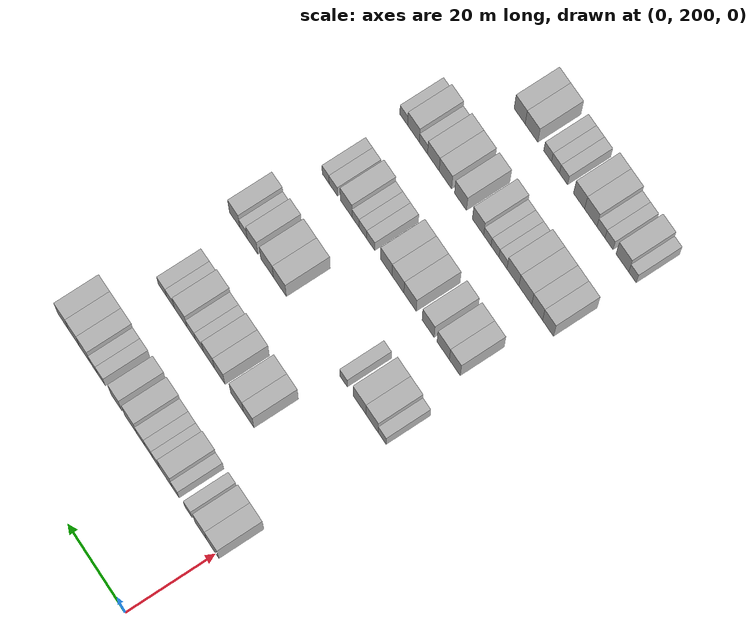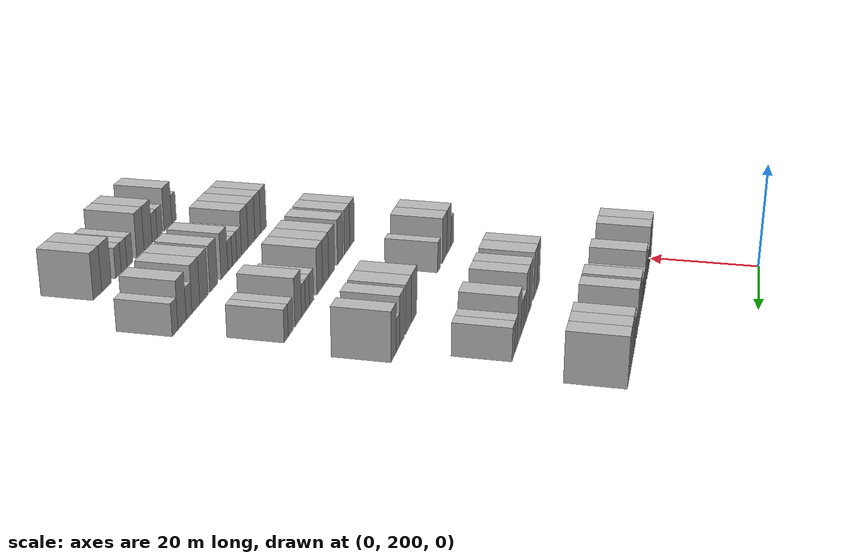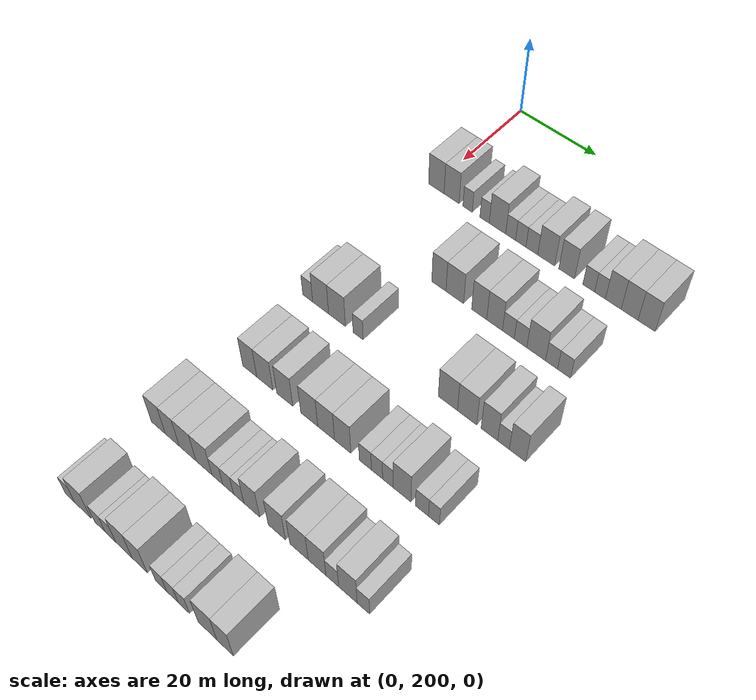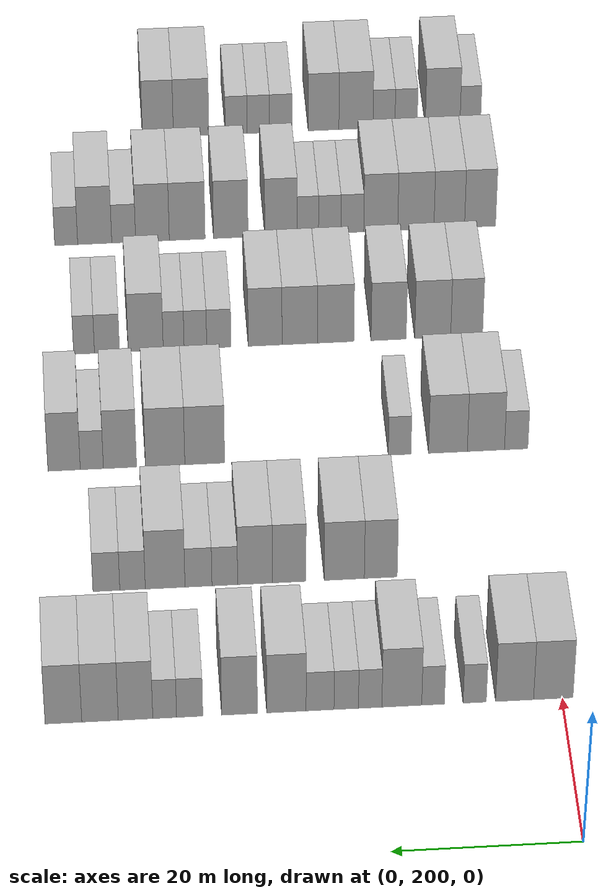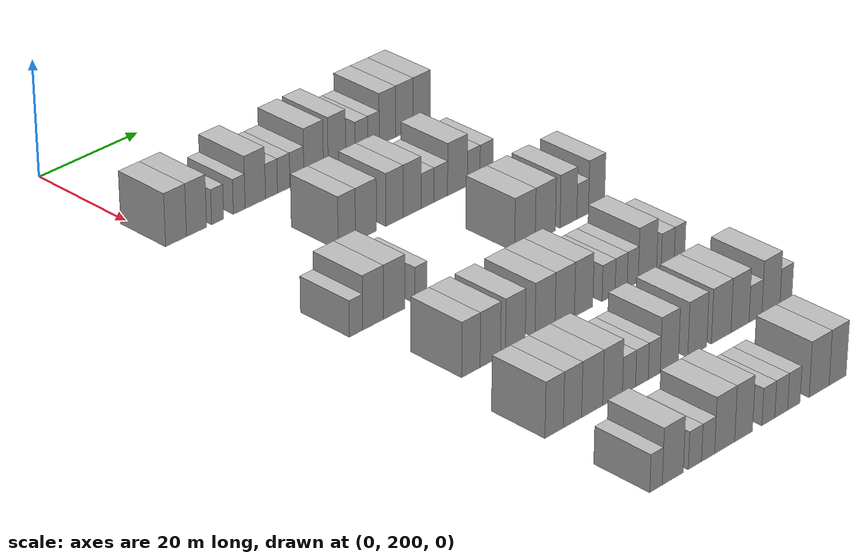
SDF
<sdf version="1.6">
 <world name="default">
  <model name="building_145">
   <static>1</static>
   <pose>25.0000 200.9862 0 0.000000 0.000000 0.000000</pose>
   <link name="link">
    <pose>0 0 4.50 0 0 0</pose>
    <collision name="collision"><geometry><box><size>10.0000 4.2171 9.0000</size></box></geometry></collision>
    <visual name="visual">
     <cast_shadows>0</cast_shadows>
     <geometry><box><size>10.0000 4.2171 9.0000</size></box></geometry>
     <material>
      <script>
       <uri>model://HANNAS_wall/materials/scripts</uri>
       <uri>model://HANNAS_wall/materials/textures</uri>
       <name>vrc/HANNAS_wall</name>
      </script>
     </material>
    </visual>
   </link>
  </model>
  <model name="building_146">
   <static>1</static>
   <pose>25.0000 205.1264 0 0.000000 0.000000 0.000000</pose>
   <link name="link">
    <pose>0 0 4.50 0 0 0</pose>
    <collision name="collision"><geometry><box><size>10.0000 4.0632 9.0000</size></box></geometry></collision>
    <visual name="visual">
     <cast_shadows>0</cast_shadows>
     <geometry><box><size>10.0000 4.0632 9.0000</size></box></geometry>
     <material>
      <script>
       <uri>model://HANNAS_wall/materials/scripts</uri>
       <uri>model://HANNAS_wall/materials/textures</uri>
       <name>vrc/HANNAS_wall</name>
      </script>
     </material>
    </visual>
   </link>
  </model>
  <model name="building_147">
   <static>1</static>
   <pose>25.0000 209.3965 0 0.000000 0.000000 0.000000</pose>
   <link name="link">
    <pose>0 0 3.00 0 0 0</pose>
    <collision name="collision"><geometry><box><size>10.0000 2.4770 6.0000</size></box></geometry></collision>
    <visual name="visual">
     <cast_shadows>0</cast_shadows>
     <geometry><box><size>10.0000 2.4770 6.0000</size></box></geometry>
     <material>
      <script>
       <uri>model://HANNAS_wall/materials/scripts</uri>
       <uri>model://HANNAS_wall/materials/textures</uri>
       <name>vrc/HANNAS_wall</name>
      </script>
     </material>
    </visual>
   </link>
  </model>
  <model name="building_148">
   <static>1</static>
   <pose>25.0000 213.8471 0 0.000000 0.000000 0.000000</pose>
   <link name="link">
    <pose>0 0 3.00 0 0 0</pose>
    <collision name="collision"><geometry><box><size>10.0000 2.4242 6.0000</size></box></geometry></collision>
    <visual name="visual">
     <cast_shadows>0</cast_shadows>
     <geometry><box><size>10.0000 2.4242 6.0000</size></box></geometry>
     <material>
      <script>
       <uri>model://HANNAS_wall/materials/scripts</uri>
       <uri>model://HANNAS_wall/materials/textures</uri>
       <name>vrc/HANNAS_wall</name>
      </script>
     </material>
    </visual>
   </link>
  </model>
  <model name="building_149">
   <static>1</static>
   <pose>25.0000 217.1848 0 0.000000 0.000000 0.000000</pose>
   <link name="link">
    <pose>0 0 4.50 0 0 0</pose>
    <collision name="collision"><geometry><box><size>10.0000 4.2511 9.0000</size></box></geometry></collision>
    <visual name="visual">
     <cast_shadows>0</cast_shadows>
     <geometry><box><size>10.0000 4.2511 9.0000</size></box></geometry>
     <material>
      <script>
       <uri>model://HANNAS_wall/materials/scripts</uri>
       <uri>model://HANNAS_wall/materials/textures</uri>
       <name>vrc/HANNAS_wall</name>
      </script>
     </material>
    </visual>
   </link>
  </model>
  <model name="building_150">
   <static>1</static>
   <pose>25.0000 220.5595 0 0.000000 0.000000 0.000000</pose>
   <link name="link">
    <pose>0 0 3.00 0 0 0</pose>
    <collision name="collision"><geometry><box><size>10.0000 2.4984 6.0000</size></box></geometry></collision>
    <visual name="visual">
     <cast_shadows>0</cast_shadows>
     <geometry><box><size>10.0000 2.4984 6.0000</size></box></geometry>
     <material>
      <script>
       <uri>model://HANNAS_wall/materials/scripts</uri>
       <uri>model://HANNAS_wall/materials/textures</uri>
       <name>vrc/HANNAS_wall</name>
      </script>
     </material>
    </visual>
   </link>
  </model>
  <model name="building_151">
   <static>1</static>
   <pose>25.0000 223.1140 0 0.000000 0.000000 0.000000</pose>
   <link name="link">
    <pose>0 0 3.00 0 0 0</pose>
    <collision name="collision"><geometry><box><size>10.0000 2.6106 6.0000</size></box></geometry></collision>
    <visual name="visual">
     <cast_shadows>0</cast_shadows>
     <geometry><box><size>10.0000 2.6106 6.0000</size></box></geometry>
     <material>
      <script>
       <uri>model://HANNAS_wall/materials/scripts</uri>
       <uri>model://HANNAS_wall/materials/textures</uri>
       <name>vrc/HANNAS_wall</name>
      </script>
     </material>
    </visual>
   </link>
  </model>
  <model name="building_152">
   <static>1</static>
   <pose>25.0000 225.9055 0 0.000000 0.000000 0.000000</pose>
   <link name="link">
    <pose>0 0 3.00 0 0 0</pose>
    <collision name="collision"><geometry><box><size>10.0000 2.9724 6.0000</size></box></geometry></collision>
    <visual name="visual">
     <cast_shadows>0</cast_shadows>
     <geometry><box><size>10.0000 2.9724 6.0000</size></box></geometry>
     <material>
      <script>
       <uri>model://HANNAS_wall/materials/scripts</uri>
       <uri>model://HANNAS_wall/materials/textures</uri>
       <name>vrc/HANNAS_wall</name>
      </script>
     </material>
    </visual>
   </link>
  </model>
  <model name="building_153">
   <static>1</static>
   <pose>25.0000 229.4831 0 0.000000 0.000000 0.000000</pose>
   <link name="link">
    <pose>0 0 4.50 0 0 0</pose>
    <collision name="collision"><geometry><box><size>10.0000 4.1829 9.0000</size></box></geometry></collision>
    <visual name="visual">
     <cast_shadows>0</cast_shadows>
     <geometry><box><size>10.0000 4.1829 9.0000</size></box></geometry>
     <material>
      <script>
       <uri>model://HANNAS_wall/materials/scripts</uri>
       <uri>model://HANNAS_wall/materials/textures</uri>
       <name>vrc/HANNAS_wall</name>
      </script>
     </material>
    </visual>
   </link>
  </model>
  <model name="building_154">
   <static>1</static>
   <pose>25.0000 234.4771 0 0.000000 0.000000 0.000000</pose>
   <link name="link">
    <pose>0 0 4.50 0 0 0</pose>
    <collision name="collision"><geometry><box><size>10.0000 3.8052 9.0000</size></box></geometry></collision>
    <visual name="visual">
     <cast_shadows>0</cast_shadows>
     <geometry><box><size>10.0000 3.8052 9.0000</size></box></geometry>
     <material>
      <script>
       <uri>model://HANNAS_wall/materials/scripts</uri>
       <uri>model://HANNAS_wall/materials/textures</uri>
       <name>vrc/HANNAS_wall</name>
      </script>
     </material>
    </visual>
   </link>
  </model>
  <model name="building_155">
   <static>1</static>
   <pose>25.0000 239.7736 0 0.000000 0.000000 0.000000</pose>
   <link name="link">
    <pose>0 0 3.00 0 0 0</pose>
    <collision name="collision"><geometry><box><size>10.0000 2.7876 6.0000</size></box></geometry></collision>
    <visual name="visual">
     <cast_shadows>0</cast_shadows>
     <geometry><box><size>10.0000 2.7876 6.0000</size></box></geometry>
     <material>
      <script>
       <uri>model://HANNAS_wall/materials/scripts</uri>
       <uri>model://HANNAS_wall/materials/textures</uri>
       <name>vrc/HANNAS_wall</name>
      </script>
     </material>
    </visual>
   </link>
  </model>
  <model name="building_156">
   <static>1</static>
   <pose>25.0000 242.4318 0 0.000000 0.000000 0.000000</pose>
   <link name="link">
    <pose>0 0 3.00 0 0 0</pose>
    <collision name="collision"><geometry><box><size>10.0000 2.5288 6.0000</size></box></geometry></collision>
    <visual name="visual">
     <cast_shadows>0</cast_shadows>
     <geometry><box><size>10.0000 2.5288 6.0000</size></box></geometry>
     <material>
      <script>
       <uri>model://HANNAS_wall/materials/scripts</uri>
       <uri>model://HANNAS_wall/materials/textures</uri>
       <name>vrc/HANNAS_wall</name>
      </script>
     </material>
    </visual>
   </link>
  </model>
  <model name="building_157">
   <static>1</static>
   <pose>25.0000 245.5266 0 0.000000 0.000000 0.000000</pose>
   <link name="link">
    <pose>0 0 4.50 0 0 0</pose>
    <collision name="collision"><geometry><box><size>10.0000 3.6608 9.0000</size></box></geometry></collision>
    <visual name="visual">
     <cast_shadows>0</cast_shadows>
     <geometry><box><size>10.0000 3.6608 9.0000</size></box></geometry>
     <material>
      <script>
       <uri>model://HANNAS_wall/materials/scripts</uri>
       <uri>model://HANNAS_wall/materials/textures</uri>
       <name>vrc/HANNAS_wall</name>
      </script>
     </material>
    </visual>
   </link>
  </model>
  <model name="building_158">
   <static>1</static>
   <pose>25.0000 249.2896 0 0.000000 0.000000 0.000000</pose>
   <link name="link">
    <pose>0 0 4.50 0 0 0</pose>
    <collision name="collision"><geometry><box><size>10.0000 3.8653 9.0000</size></box></geometry></collision>
    <visual name="visual">
     <cast_shadows>0</cast_shadows>
     <geometry><box><size>10.0000 3.8653 9.0000</size></box></geometry>
     <material>
      <script>
       <uri>model://HANNAS_wall/materials/scripts</uri>
       <uri>model://HANNAS_wall/materials/textures</uri>
       <name>vrc/HANNAS_wall</name>
      </script>
     </material>
    </visual>
   </link>
  </model>
  <model name="building_159">
   <static>1</static>
   <pose>25.0000 253.1648 0 0.000000 0.000000 0.000000</pose>
   <link name="link">
    <pose>0 0 4.50 0 0 0</pose>
    <collision name="collision"><geometry><box><size>10.0000 3.8851 9.0000</size></box></geometry></collision>
    <visual name="visual">
     <cast_shadows>0</cast_shadows>
     <geometry><box><size>10.0000 3.8851 9.0000</size></box></geometry>
     <material>
      <script>
       <uri>model://HANNAS_wall/materials/scripts</uri>
       <uri>model://HANNAS_wall/materials/textures</uri>
       <name>vrc/HANNAS_wall</name>
      </script>
     </material>
    </visual>
   </link>
  </model>
  <model name="building_316">
   <static>1</static>
   <pose>44.0000 217.8946 0 0.000000 0.000000 0.000000</pose>
   <link name="link">
    <pose>0 0 4.50 0 0 0</pose>
    <collision name="collision"><geometry><box><size>10.0000 3.6080 9.0000</size></box></geometry></collision>
    <visual name="visual">
     <cast_shadows>0</cast_shadows>
     <geometry><box><size>10.0000 3.6080 9.0000</size></box></geometry>
     <material>
      <script>
       <uri>model://HANNAS_wall/materials/scripts</uri>
       <uri>model://HANNAS_wall/materials/textures</uri>
       <name>vrc/HANNAS_wall</name>
      </script>
     </material>
    </visual>
   </link>
  </model>
  <model name="building_317">
   <static>1</static>
   <pose>44.0000 221.8998 0 0.000000 0.000000 0.000000</pose>
   <link name="link">
    <pose>0 0 4.50 0 0 0</pose>
    <collision name="collision"><geometry><box><size>10.0000 4.4024 9.0000</size></box></geometry></collision>
    <visual name="visual">
     <cast_shadows>0</cast_shadows>
     <geometry><box><size>10.0000 4.4024 9.0000</size></box></geometry>
     <material>
      <script>
       <uri>model://HANNAS_wall/materials/scripts</uri>
       <uri>model://HANNAS_wall/materials/textures</uri>
       <name>vrc/HANNAS_wall</name>
      </script>
     </material>
    </visual>
   </link>
  </model>
  <model name="building_318">
   <static>1</static>
   <pose>44.0000 227.9443 0 0.000000 0.000000 0.000000</pose>
   <link name="link">
    <pose>0 0 4.50 0 0 0</pose>
    <collision name="collision"><geometry><box><size>10.0000 3.6867 9.0000</size></box></geometry></collision>
    <visual name="visual">
     <cast_shadows>0</cast_shadows>
     <geometry><box><size>10.0000 3.6867 9.0000</size></box></geometry>
     <material>
      <script>
       <uri>model://HANNAS_wall/materials/scripts</uri>
       <uri>model://HANNAS_wall/materials/textures</uri>
       <name>vrc/HANNAS_wall</name>
      </script>
     </material>
    </visual>
   </link>
  </model>
  <model name="building_319">
   <static>1</static>
   <pose>44.0000 231.6931 0 0.000000 0.000000 0.000000</pose>
   <link name="link">
    <pose>0 0 4.50 0 0 0</pose>
    <collision name="collision"><geometry><box><size>10.0000 3.8109 9.0000</size></box></geometry></collision>
    <visual name="visual">
     <cast_shadows>0</cast_shadows>
     <geometry><box><size>10.0000 3.8109 9.0000</size></box></geometry>
     <material>
      <script>
       <uri>model://HANNAS_wall/materials/scripts</uri>
       <uri>model://HANNAS_wall/materials/textures</uri>
       <name>vrc/HANNAS_wall</name>
      </script>
     </material>
    </visual>
   </link>
  </model>
  <model name="building_320">
   <static>1</static>
   <pose>44.0000 235.0055 0 0.000000 0.000000 0.000000</pose>
   <link name="link">
    <pose>0 0 3.00 0 0 0</pose>
    <collision name="collision"><geometry><box><size>10.0000 2.8140 6.0000</size></box></geometry></collision>
    <visual name="visual">
     <cast_shadows>0</cast_shadows>
     <geometry><box><size>10.0000 2.8140 6.0000</size></box></geometry>
     <material>
      <script>
       <uri>model://HANNAS_wall/materials/scripts</uri>
       <uri>model://HANNAS_wall/materials/textures</uri>
       <name>vrc/HANNAS_wall</name>
      </script>
     </material>
    </visual>
   </link>
  </model>
  <model name="building_321">
   <static>1</static>
   <pose>44.0000 237.8888 0 0.000000 0.000000 0.000000</pose>
   <link name="link">
    <pose>0 0 3.00 0 0 0</pose>
    <collision name="collision"><geometry><box><size>10.0000 2.9527 6.0000</size></box></geometry></collision>
    <visual name="visual">
     <cast_shadows>0</cast_shadows>
     <geometry><box><size>10.0000 2.9527 6.0000</size></box></geometry>
     <material>
      <script>
       <uri>model://HANNAS_wall/materials/scripts</uri>
       <uri>model://HANNAS_wall/materials/textures</uri>
       <name>vrc/HANNAS_wall</name>
      </script>
     </material>
    </visual>
   </link>
  </model>
  <model name="building_322">
   <static>1</static>
   <pose>44.0000 241.5381 0 0.000000 0.000000 0.000000</pose>
   <link name="link">
    <pose>0 0 4.50 0 0 0</pose>
    <collision name="collision"><geometry><box><size>10.0000 4.3459 9.0000</size></box></geometry></collision>
    <visual name="visual">
     <cast_shadows>0</cast_shadows>
     <geometry><box><size>10.0000 4.3459 9.0000</size></box></geometry>
     <material>
      <script>
       <uri>model://HANNAS_wall/materials/scripts</uri>
       <uri>model://HANNAS_wall/materials/textures</uri>
       <name>vrc/HANNAS_wall</name>
      </script>
     </material>
    </visual>
   </link>
  </model>
  <model name="building_323">
   <static>1</static>
   <pose>44.0000 245.1040 0 0.000000 0.000000 0.000000</pose>
   <link name="link">
    <pose>0 0 3.00 0 0 0</pose>
    <collision name="collision"><geometry><box><size>10.0000 2.7858 6.0000</size></box></geometry></collision>
    <visual name="visual">
     <cast_shadows>0</cast_shadows>
     <geometry><box><size>10.0000 2.7858 6.0000</size></box></geometry>
     <material>
      <script>
       <uri>model://HANNAS_wall/materials/scripts</uri>
       <uri>model://HANNAS_wall/materials/textures</uri>
       <name>vrc/HANNAS_wall</name>
      </script>
     </material>
    </visual>
   </link>
  </model>
  <model name="building_324">
   <static>1</static>
   <pose>44.0000 247.9625 0 0.000000 0.000000 0.000000</pose>
   <link name="link">
    <pose>0 0 3.00 0 0 0</pose>
    <collision name="collision"><geometry><box><size>10.0000 2.9314 6.0000</size></box></geometry></collision>
    <visual name="visual">
     <cast_shadows>0</cast_shadows>
     <geometry><box><size>10.0000 2.9314 6.0000</size></box></geometry>
     <material>
      <script>
       <uri>model://HANNAS_wall/materials/scripts</uri>
       <uri>model://HANNAS_wall/materials/textures</uri>
       <name>vrc/HANNAS_wall</name>
      </script>
     </material>
    </visual>
   </link>
  </model>
  <model name="building_490">
   <static>1</static>
   <pose>63.0000 201.0103 0 0.000000 0.000000 0.000000</pose>
   <link name="link">
    <pose>0 0 3.00 0 0 0</pose>
    <collision name="collision"><geometry><box><size>10.0000 2.6530 6.0000</size></box></geometry></collision>
    <visual name="visual">
     <cast_shadows>0</cast_shadows>
     <geometry><box><size>10.0000 2.6530 6.0000</size></box></geometry>
     <material>
      <script>
       <uri>model://HANNAS_wall/materials/scripts</uri>
       <uri>model://HANNAS_wall/materials/textures</uri>
       <name>vrc/HANNAS_wall</name>
      </script>
     </material>
    </visual>
   </link>
  </model>
  <model name="building_491">
   <static>1</static>
   <pose>63.0000 204.4442 0 0.000000 0.000000 0.000000</pose>
   <link name="link">
    <pose>0 0 4.50 0 0 0</pose>
    <collision name="collision"><geometry><box><size>10.0000 4.2148 9.0000</size></box></geometry></collision>
    <visual name="visual">
     <cast_shadows>0</cast_shadows>
     <geometry><box><size>10.0000 4.2148 9.0000</size></box></geometry>
     <material>
      <script>
       <uri>model://HANNAS_wall/materials/scripts</uri>
       <uri>model://HANNAS_wall/materials/textures</uri>
       <name>vrc/HANNAS_wall</name>
      </script>
     </material>
    </visual>
   </link>
  </model>
  <model name="building_492">
   <static>1</static>
   <pose>63.0000 208.7459 0 0.000000 0.000000 0.000000</pose>
   <link name="link">
    <pose>0 0 4.50 0 0 0</pose>
    <collision name="collision"><geometry><box><size>10.0000 4.3887 9.0000</size></box></geometry></collision>
    <visual name="visual">
     <cast_shadows>0</cast_shadows>
     <geometry><box><size>10.0000 4.3887 9.0000</size></box></geometry>
     <material>
      <script>
       <uri>model://HANNAS_wall/materials/scripts</uri>
       <uri>model://HANNAS_wall/materials/textures</uri>
       <name>vrc/HANNAS_wall</name>
      </script>
     </material>
    </visual>
   </link>
  </model>
  <model name="building_493">
   <static>1</static>
   <pose>63.0000 214.2210 0 0.000000 0.000000 0.000000</pose>
   <link name="link">
    <pose>0 0 3.00 0 0 0</pose>
    <collision name="collision"><geometry><box><size>10.0000 2.5614 6.0000</size></box></geometry></collision>
    <visual name="visual">
     <cast_shadows>0</cast_shadows>
     <geometry><box><size>10.0000 2.5614 6.0000</size></box></geometry>
     <material>
      <script>
       <uri>model://HANNAS_wall/materials/scripts</uri>
       <uri>model://HANNAS_wall/materials/textures</uri>
       <name>vrc/HANNAS_wall</name>
      </script>
     </material>
    </visual>
   </link>
  </model>
  <model name="building_494">
   <static>1</static>
   <pose>63.0000 236.2315 0 0.000000 0.000000 0.000000</pose>
   <link name="link">
    <pose>0 0 4.50 0 0 0</pose>
    <collision name="collision"><geometry><box><size>10.0000 4.4865 9.0000</size></box></geometry></collision>
    <visual name="visual">
     <cast_shadows>0</cast_shadows>
     <geometry><box><size>10.0000 4.4865 9.0000</size></box></geometry>
     <material>
      <script>
       <uri>model://HANNAS_wall/materials/scripts</uri>
       <uri>model://HANNAS_wall/materials/textures</uri>
       <name>vrc/HANNAS_wall</name>
      </script>
     </material>
    </visual>
   </link>
  </model>
  <model name="building_495">
   <static>1</static>
   <pose>63.0000 240.6919 0 0.000000 0.000000 0.000000</pose>
   <link name="link">
    <pose>0 0 4.50 0 0 0</pose>
    <collision name="collision"><geometry><box><size>10.0000 4.4343 9.0000</size></box></geometry></collision>
    <visual name="visual">
     <cast_shadows>0</cast_shadows>
     <geometry><box><size>10.0000 4.4343 9.0000</size></box></geometry>
     <material>
      <script>
       <uri>model://HANNAS_wall/materials/scripts</uri>
       <uri>model://HANNAS_wall/materials/textures</uri>
       <name>vrc/HANNAS_wall</name>
      </script>
     </material>
    </visual>
   </link>
  </model>
  <model name="building_496">
   <static>1</static>
   <pose>63.0000 245.7775 0 0.000000 0.000000 0.000000</pose>
   <link name="link">
    <pose>0 0 4.50 0 0 0</pose>
    <collision name="collision"><geometry><box><size>10.0000 3.7368 9.0000</size></box></geometry></collision>
    <visual name="visual">
     <cast_shadows>0</cast_shadows>
     <geometry><box><size>10.0000 3.7368 9.0000</size></box></geometry>
     <material>
      <script>
       <uri>model://HANNAS_wall/materials/scripts</uri>
       <uri>model://HANNAS_wall/materials/textures</uri>
       <name>vrc/HANNAS_wall</name>
      </script>
     </material>
    </visual>
   </link>
  </model>
  <model name="building_497">
   <static>1</static>
   <pose>63.0000 248.9442 0 0.000000 0.000000 0.000000</pose>
   <link name="link">
    <pose>0 0 3.00 0 0 0</pose>
    <collision name="collision"><geometry><box><size>10.0000 2.5967 6.0000</size></box></geometry></collision>
    <visual name="visual">
     <cast_shadows>0</cast_shadows>
     <geometry><box><size>10.0000 2.5967 6.0000</size></box></geometry>
     <material>
      <script>
       <uri>model://HANNAS_wall/materials/scripts</uri>
       <uri>model://HANNAS_wall/materials/textures</uri>
       <name>vrc/HANNAS_wall</name>
      </script>
     </material>
    </visual>
   </link>
  </model>
  <model name="building_498">
   <static>1</static>
   <pose>63.0000 252.0575 0 0.000000 0.000000 0.000000</pose>
   <link name="link">
    <pose>0 0 4.50 0 0 0</pose>
    <collision name="collision"><geometry><box><size>10.0000 3.6298 9.0000</size></box></geometry></collision>
    <visual name="visual">
     <cast_shadows>0</cast_shadows>
     <geometry><box><size>10.0000 3.6298 9.0000</size></box></geometry>
     <material>
      <script>
       <uri>model://HANNAS_wall/materials/scripts</uri>
       <uri>model://HANNAS_wall/materials/textures</uri>
       <name>vrc/HANNAS_wall</name>
      </script>
     </material>
    </visual>
   </link>
  </model>
  <model name="building_656">
   <static>1</static>
   <pose>82.0000 204.8150 0 0.000000 0.000000 0.000000</pose>
   <link name="link">
    <pose>0 0 4.50 0 0 0</pose>
    <collision name="collision"><geometry><box><size>10.0000 3.7107 9.0000</size></box></geometry></collision>
    <visual name="visual">
     <cast_shadows>0</cast_shadows>
     <geometry><box><size>10.0000 3.7107 9.0000</size></box></geometry>
     <material>
      <script>
       <uri>model://HANNAS_wall/materials/scripts</uri>
       <uri>model://HANNAS_wall/materials/textures</uri>
       <name>vrc/HANNAS_wall</name>
      </script>
     </material>
    </visual>
   </link>
  </model>
  <model name="building_657">
   <static>1</static>
   <pose>82.0000 208.7645 0 0.000000 0.000000 0.000000</pose>
   <link name="link">
    <pose>0 0 4.50 0 0 0</pose>
    <collision name="collision"><geometry><box><size>10.0000 4.1883 9.0000</size></box></geometry></collision>
    <visual name="visual">
     <cast_shadows>0</cast_shadows>
     <geometry><box><size>10.0000 4.1883 9.0000</size></box></geometry>
     <material>
      <script>
       <uri>model://HANNAS_wall/materials/scripts</uri>
       <uri>model://HANNAS_wall/materials/textures</uri>
       <name>vrc/HANNAS_wall</name>
      </script>
     </material>
    </visual>
   </link>
  </model>
  <model name="building_658">
   <static>1</static>
   <pose>82.0000 213.9033 0 0.000000 0.000000 0.000000</pose>
   <link name="link">
    <pose>0 0 4.50 0 0 0</pose>
    <collision name="collision"><geometry><box><size>10.0000 4.0893 9.0000</size></box></geometry></collision>
    <visual name="visual">
     <cast_shadows>0</cast_shadows>
     <geometry><box><size>10.0000 4.0893 9.0000</size></box></geometry>
     <material>
      <script>
       <uri>model://HANNAS_wall/materials/scripts</uri>
       <uri>model://HANNAS_wall/materials/textures</uri>
       <name>vrc/HANNAS_wall</name>
      </script>
     </material>
    </visual>
   </link>
  </model>
  <model name="building_659">
   <static>1</static>
   <pose>82.0000 220.0660 0 0.000000 0.000000 0.000000</pose>
   <link name="link">
    <pose>0 0 4.50 0 0 0</pose>
    <collision name="collision"><geometry><box><size>10.0000 4.2360 9.0000</size></box></geometry></collision>
    <visual name="visual">
     <cast_shadows>0</cast_shadows>
     <geometry><box><size>10.0000 4.2360 9.0000</size></box></geometry>
     <material>
      <script>
       <uri>model://HANNAS_wall/materials/scripts</uri>
       <uri>model://HANNAS_wall/materials/textures</uri>
       <name>vrc/HANNAS_wall</name>
      </script>
     </material>
    </visual>
   </link>
  </model>
  <model name="building_660">
   <static>1</static>
   <pose>82.0000 224.2387 0 0.000000 0.000000 0.000000</pose>
   <link name="link">
    <pose>0 0 4.50 0 0 0</pose>
    <collision name="collision"><geometry><box><size>10.0000 4.1094 9.0000</size></box></geometry></collision>
    <visual name="visual">
     <cast_shadows>0</cast_shadows>
     <geometry><box><size>10.0000 4.1094 9.0000</size></box></geometry>
     <material>
      <script>
       <uri>model://HANNAS_wall/materials/scripts</uri>
       <uri>model://HANNAS_wall/materials/textures</uri>
       <name>vrc/HANNAS_wall</name>
      </script>
     </material>
    </visual>
   </link>
  </model>
  <model name="building_661">
   <static>1</static>
   <pose>82.0000 228.2548 0 0.000000 0.000000 0.000000</pose>
   <link name="link">
    <pose>0 0 4.50 0 0 0</pose>
    <collision name="collision"><geometry><box><size>10.0000 3.9227 9.0000</size></box></geometry></collision>
    <visual name="visual">
     <cast_shadows>0</cast_shadows>
     <geometry><box><size>10.0000 3.9227 9.0000</size></box></geometry>
     <material>
      <script>
       <uri>model://HANNAS_wall/materials/scripts</uri>
       <uri>model://HANNAS_wall/materials/textures</uri>
       <name>vrc/HANNAS_wall</name>
      </script>
     </material>
    </visual>
   </link>
  </model>
  <model name="building_662">
   <static>1</static>
   <pose>82.0000 233.6256 0 0.000000 0.000000 0.000000</pose>
   <link name="link">
    <pose>0 0 3.00 0 0 0</pose>
    <collision name="collision"><geometry><box><size>10.0000 2.8188 6.0000</size></box></geometry></collision>
    <visual name="visual">
     <cast_shadows>0</cast_shadows>
     <geometry><box><size>10.0000 2.8188 6.0000</size></box></geometry>
     <material>
      <script>
       <uri>model://HANNAS_wall/materials/scripts</uri>
       <uri>model://HANNAS_wall/materials/textures</uri>
       <name>vrc/HANNAS_wall</name>
      </script>
     </material>
    </visual>
   </link>
  </model>
  <model name="building_663">
   <static>1</static>
   <pose>82.0000 236.3442 0 0.000000 0.000000 0.000000</pose>
   <link name="link">
    <pose>0 0 3.00 0 0 0</pose>
    <collision name="collision"><geometry><box><size>10.0000 2.6184 6.0000</size></box></geometry></collision>
    <visual name="visual">
     <cast_shadows>0</cast_shadows>
     <geometry><box><size>10.0000 2.6184 6.0000</size></box></geometry>
     <material>
      <script>
       <uri>model://HANNAS_wall/materials/scripts</uri>
       <uri>model://HANNAS_wall/materials/textures</uri>
       <name>vrc/HANNAS_wall</name>
      </script>
     </material>
    </visual>
   </link>
  </model>
  <model name="building_664">
   <static>1</static>
   <pose>82.0000 238.8633 0 0.000000 0.000000 0.000000</pose>
   <link name="link">
    <pose>0 0 3.00 0 0 0</pose>
    <collision name="collision"><geometry><box><size>10.0000 2.4198 6.0000</size></box></geometry></collision>
    <visual name="visual">
     <cast_shadows>0</cast_shadows>
     <geometry><box><size>10.0000 2.4198 6.0000</size></box></geometry>
     <material>
      <script>
       <uri>model://HANNAS_wall/materials/scripts</uri>
       <uri>model://HANNAS_wall/materials/textures</uri>
       <name>vrc/HANNAS_wall</name>
      </script>
     </material>
    </visual>
   </link>
  </model>
  <model name="building_665">
   <static>1</static>
   <pose>82.0000 242.1019 0 0.000000 0.000000 0.000000</pose>
   <link name="link">
    <pose>0 0 4.50 0 0 0</pose>
    <collision name="collision"><geometry><box><size>10.0000 4.0573 9.0000</size></box></geometry></collision>
    <visual name="visual">
     <cast_shadows>0</cast_shadows>
     <geometry><box><size>10.0000 4.0573 9.0000</size></box></geometry>
     <material>
      <script>
       <uri>model://HANNAS_wall/materials/scripts</uri>
       <uri>model://HANNAS_wall/materials/textures</uri>
       <name>vrc/HANNAS_wall</name>
      </script>
     </material>
    </visual>
   </link>
  </model>
  <model name="building_666">
   <static>1</static>
   <pose>82.0000 246.5807 0 0.000000 0.000000 0.000000</pose>
   <link name="link">
    <pose>0 0 3.00 0 0 0</pose>
    <collision name="collision"><geometry><box><size>10.0000 2.9004 6.0000</size></box></geometry></collision>
    <visual name="visual">
     <cast_shadows>0</cast_shadows>
     <geometry><box><size>10.0000 2.9004 6.0000</size></box></geometry>
     <material>
      <script>
       <uri>model://HANNAS_wall/materials/scripts</uri>
       <uri>model://HANNAS_wall/materials/textures</uri>
       <name>vrc/HANNAS_wall</name>
      </script>
     </material>
    </visual>
   </link>
  </model>
  <model name="building_667">
   <static>1</static>
   <pose>82.0000 249.2341 0 0.000000 0.000000 0.000000</pose>
   <link name="link">
    <pose>0 0 3.00 0 0 0</pose>
    <collision name="collision"><geometry><box><size>10.0000 2.4063 6.0000</size></box></geometry></collision>
    <visual name="visual">
     <cast_shadows>0</cast_shadows>
     <geometry><box><size>10.0000 2.4063 6.0000</size></box></geometry>
     <material>
      <script>
       <uri>model://HANNAS_wall/materials/scripts</uri>
       <uri>model://HANNAS_wall/materials/textures</uri>
       <name>vrc/HANNAS_wall</name>
      </script>
     </material>
    </visual>
   </link>
  </model>
  <model name="building_838">
   <static>1</static>
   <pose>101.0000 201.3899 0 0.000000 0.000000 0.000000</pose>
   <link name="link">
    <pose>0 0 4.50 0 0 0</pose>
    <collision name="collision"><geometry><box><size>10.0000 3.7200 9.0000</size></box></geometry></collision>
    <visual name="visual">
     <cast_shadows>0</cast_shadows>
     <geometry><box><size>10.0000 3.7200 9.0000</size></box></geometry>
     <material>
      <script>
       <uri>model://HANNAS_wall/materials/scripts</uri>
       <uri>model://HANNAS_wall/materials/textures</uri>
       <name>vrc/HANNAS_wall</name>
      </script>
     </material>
    </visual>
   </link>
  </model>
  <model name="building_839">
   <static>1</static>
   <pose>101.0000 205.0820 0 0.000000 0.000000 0.000000</pose>
   <link name="link">
    <pose>0 0 4.50 0 0 0</pose>
    <collision name="collision"><geometry><box><size>10.0000 3.6643 9.0000</size></box></geometry></collision>
    <visual name="visual">
     <cast_shadows>0</cast_shadows>
     <geometry><box><size>10.0000 3.6643 9.0000</size></box></geometry>
     <material>
      <script>
       <uri>model://HANNAS_wall/materials/scripts</uri>
       <uri>model://HANNAS_wall/materials/textures</uri>
       <name>vrc/HANNAS_wall</name>
      </script>
     </material>
    </visual>
   </link>
  </model>
  <model name="building_840">
   <static>1</static>
   <pose>101.0000 209.0822 0 0.000000 0.000000 0.000000</pose>
   <link name="link">
    <pose>0 0 4.50 0 0 0</pose>
    <collision name="collision"><geometry><box><size>10.0000 4.3361 9.0000</size></box></geometry></collision>
    <visual name="visual">
     <cast_shadows>0</cast_shadows>
     <geometry><box><size>10.0000 4.3361 9.0000</size></box></geometry>
     <material>
      <script>
       <uri>model://HANNAS_wall/materials/scripts</uri>
       <uri>model://HANNAS_wall/materials/textures</uri>
       <name>vrc/HANNAS_wall</name>
      </script>
     </material>
    </visual>
   </link>
  </model>
  <model name="building_841">
   <static>1</static>
   <pose>101.0000 213.2820 0 0.000000 0.000000 0.000000</pose>
   <link name="link">
    <pose>0 0 4.50 0 0 0</pose>
    <collision name="collision"><geometry><box><size>10.0000 4.0635 9.0000</size></box></geometry></collision>
    <visual name="visual">
     <cast_shadows>0</cast_shadows>
     <geometry><box><size>10.0000 4.0635 9.0000</size></box></geometry>
     <material>
      <script>
       <uri>model://HANNAS_wall/materials/scripts</uri>
       <uri>model://HANNAS_wall/materials/textures</uri>
       <name>vrc/HANNAS_wall</name>
      </script>
     </material>
    </visual>
   </link>
  </model>
  <model name="building_842">
   <static>1</static>
   <pose>101.0000 216.6861 0 0.000000 0.000000 0.000000</pose>
   <link name="link">
    <pose>0 0 3.00 0 0 0</pose>
    <collision name="collision"><geometry><box><size>10.0000 2.7445 6.0000</size></box></geometry></collision>
    <visual name="visual">
     <cast_shadows>0</cast_shadows>
     <geometry><box><size>10.0000 2.7445 6.0000</size></box></geometry>
     <material>
      <script>
       <uri>model://HANNAS_wall/materials/scripts</uri>
       <uri>model://HANNAS_wall/materials/textures</uri>
       <name>vrc/HANNAS_wall</name>
      </script>
     </material>
    </visual>
   </link>
  </model>
  <model name="building_843">
   <static>1</static>
   <pose>101.0000 219.3907 0 0.000000 0.000000 0.000000</pose>
   <link name="link">
    <pose>0 0 3.00 0 0 0</pose>
    <collision name="collision"><geometry><box><size>10.0000 2.6646 6.0000</size></box></geometry></collision>
    <visual name="visual">
     <cast_shadows>0</cast_shadows>
     <geometry><box><size>10.0000 2.6646 6.0000</size></box></geometry>
     <material>
      <script>
       <uri>model://HANNAS_wall/materials/scripts</uri>
       <uri>model://HANNAS_wall/materials/textures</uri>
       <name>vrc/HANNAS_wall</name>
      </script>
     </material>
    </visual>
   </link>
  </model>
  <model name="building_844">
   <static>1</static>
   <pose>101.0000 221.9916 0 0.000000 0.000000 0.000000</pose>
   <link name="link">
    <pose>0 0 3.00 0 0 0</pose>
    <collision name="collision"><geometry><box><size>10.0000 2.5372 6.0000</size></box></geometry></collision>
    <visual name="visual">
     <cast_shadows>0</cast_shadows>
     <geometry><box><size>10.0000 2.5372 6.0000</size></box></geometry>
     <material>
      <script>
       <uri>model://HANNAS_wall/materials/scripts</uri>
       <uri>model://HANNAS_wall/materials/textures</uri>
       <name>vrc/HANNAS_wall</name>
      </script>
     </material>
    </visual>
   </link>
  </model>
  <model name="building_845">
   <static>1</static>
   <pose>101.0000 225.1946 0 0.000000 0.000000 0.000000</pose>
   <link name="link">
    <pose>0 0 4.50 0 0 0</pose>
    <collision name="collision"><geometry><box><size>10.0000 3.8689 9.0000</size></box></geometry></collision>
    <visual name="visual">
     <cast_shadows>0</cast_shadows>
     <geometry><box><size>10.0000 3.8689 9.0000</size></box></geometry>
     <material>
      <script>
       <uri>model://HANNAS_wall/materials/scripts</uri>
       <uri>model://HANNAS_wall/materials/textures</uri>
       <name>vrc/HANNAS_wall</name>
      </script>
     </material>
    </visual>
   </link>
  </model>
  <model name="building_846">
   <static>1</static>
   <pose>101.0000 231.1857 0 0.000000 0.000000 0.000000</pose>
   <link name="link">
    <pose>0 0 4.50 0 0 0</pose>
    <collision name="collision"><geometry><box><size>10.0000 4.1132 9.0000</size></box></geometry></collision>
    <visual name="visual">
     <cast_shadows>0</cast_shadows>
     <geometry><box><size>10.0000 4.1132 9.0000</size></box></geometry>
     <material>
      <script>
       <uri>model://HANNAS_wall/materials/scripts</uri>
       <uri>model://HANNAS_wall/materials/textures</uri>
       <name>vrc/HANNAS_wall</name>
      </script>
     </material>
    </visual>
   </link>
  </model>
  <model name="building_847">
   <static>1</static>
   <pose>101.0000 236.3783 0 0.000000 0.000000 0.000000</pose>
   <link name="link">
    <pose>0 0 4.50 0 0 0</pose>
    <collision name="collision"><geometry><box><size>10.0000 4.2720 9.0000</size></box></geometry></collision>
    <visual name="visual">
     <cast_shadows>0</cast_shadows>
     <geometry><box><size>10.0000 4.2720 9.0000</size></box></geometry>
     <material>
      <script>
       <uri>model://HANNAS_wall/materials/scripts</uri>
       <uri>model://HANNAS_wall/materials/textures</uri>
       <name>vrc/HANNAS_wall</name>
      </script>
     </material>
    </visual>
   </link>
  </model>
  <model name="building_848">
   <static>1</static>
   <pose>101.0000 240.5161 0 0.000000 0.000000 0.000000</pose>
   <link name="link">
    <pose>0 0 4.50 0 0 0</pose>
    <collision name="collision"><geometry><box><size>10.0000 4.0037 9.0000</size></box></geometry></collision>
    <visual name="visual">
     <cast_shadows>0</cast_shadows>
     <geometry><box><size>10.0000 4.0037 9.0000</size></box></geometry>
     <material>
      <script>
       <uri>model://HANNAS_wall/materials/scripts</uri>
       <uri>model://HANNAS_wall/materials/textures</uri>
       <name>vrc/HANNAS_wall</name>
      </script>
     </material>
    </visual>
   </link>
  </model>
  <model name="building_849">
   <static>1</static>
   <pose>101.0000 243.9394 0 0.000000 0.000000 0.000000</pose>
   <link name="link">
    <pose>0 0 3.00 0 0 0</pose>
    <collision name="collision"><geometry><box><size>10.0000 2.8430 6.0000</size></box></geometry></collision>
    <visual name="visual">
     <cast_shadows>0</cast_shadows>
     <geometry><box><size>10.0000 2.8430 6.0000</size></box></geometry>
     <material>
      <script>
       <uri>model://HANNAS_wall/materials/scripts</uri>
       <uri>model://HANNAS_wall/materials/textures</uri>
       <name>vrc/HANNAS_wall</name>
      </script>
     </material>
    </visual>
   </link>
  </model>
  <model name="building_850">
   <static>1</static>
   <pose>101.0000 247.3871 0 0.000000 0.000000 0.000000</pose>
   <link name="link">
    <pose>0 0 4.50 0 0 0</pose>
    <collision name="collision"><geometry><box><size>10.0000 4.0523 9.0000</size></box></geometry></collision>
    <visual name="visual">
     <cast_shadows>0</cast_shadows>
     <geometry><box><size>10.0000 4.0523 9.0000</size></box></geometry>
     <material>
      <script>
       <uri>model://HANNAS_wall/materials/scripts</uri>
       <uri>model://HANNAS_wall/materials/textures</uri>
       <name>vrc/HANNAS_wall</name>
      </script>
     </material>
    </visual>
   </link>
  </model>
  <model name="building_851">
   <static>1</static>
   <pose>101.0000 250.7733 0 0.000000 0.000000 0.000000</pose>
   <link name="link">
    <pose>0 0 3.00 0 0 0</pose>
    <collision name="collision"><geometry><box><size>10.0000 2.7201 6.0000</size></box></geometry></collision>
    <visual name="visual">
     <cast_shadows>0</cast_shadows>
     <geometry><box><size>10.0000 2.7201 6.0000</size></box></geometry>
     <material>
      <script>
       <uri>model://HANNAS_wall/materials/scripts</uri>
       <uri>model://HANNAS_wall/materials/textures</uri>
       <name>vrc/HANNAS_wall</name>
      </script>
     </material>
    </visual>
   </link>
  </model>
  <model name="building_1020">
   <static>1</static>
   <pose>120.0000 200.7315 0 0.000000 0.000000 0.000000</pose>
   <link name="link">
    <pose>0 0 3.00 0 0 0</pose>
    <collision name="collision"><geometry><box><size>10.0000 2.5265 6.0000</size></box></geometry></collision>
    <visual name="visual">
     <cast_shadows>0</cast_shadows>
     <geometry><box><size>10.0000 2.5265 6.0000</size></box></geometry>
     <material>
      <script>
       <uri>model://HANNAS_wall/materials/scripts</uri>
       <uri>model://HANNAS_wall/materials/textures</uri>
       <name>vrc/HANNAS_wall</name>
      </script>
     </material>
    </visual>
   </link>
  </model>
  <model name="building_1021">
   <static>1</static>
   <pose>120.0000 204.1293 0 0.000000 0.000000 0.000000</pose>
   <link name="link">
    <pose>0 0 4.50 0 0 0</pose>
    <collision name="collision"><geometry><box><size>10.0000 4.2690 9.0000</size></box></geometry></collision>
    <visual name="visual">
     <cast_shadows>0</cast_shadows>
     <geometry><box><size>10.0000 4.2690 9.0000</size></box></geometry>
     <material>
      <script>
       <uri>model://HANNAS_wall/materials/scripts</uri>
       <uri>model://HANNAS_wall/materials/textures</uri>
       <name>vrc/HANNAS_wall</name>
      </script>
     </material>
    </visual>
   </link>
  </model>
  <model name="building_1022">
   <static>1</static>
   <pose>120.0000 208.6311 0 0.000000 0.000000 0.000000</pose>
   <link name="link">
    <pose>0 0 3.00 0 0 0</pose>
    <collision name="collision"><geometry><box><size>10.0000 2.7346 6.0000</size></box></geometry></collision>
    <visual name="visual">
     <cast_shadows>0</cast_shadows>
     <geometry><box><size>10.0000 2.7346 6.0000</size></box></geometry>
     <material>
      <script>
       <uri>model://HANNAS_wall/materials/scripts</uri>
       <uri>model://HANNAS_wall/materials/textures</uri>
       <name>vrc/HANNAS_wall</name>
      </script>
     </material>
    </visual>
   </link>
  </model>
  <model name="building_1023">
   <static>1</static>
   <pose>120.0000 211.3491 0 0.000000 0.000000 0.000000</pose>
   <link name="link">
    <pose>0 0 3.00 0 0 0</pose>
    <collision name="collision"><geometry><box><size>10.0000 2.7015 6.0000</size></box></geometry></collision>
    <visual name="visual">
     <cast_shadows>0</cast_shadows>
     <geometry><box><size>10.0000 2.7015 6.0000</size></box></geometry>
     <material>
      <script>
       <uri>model://HANNAS_wall/materials/scripts</uri>
       <uri>model://HANNAS_wall/materials/textures</uri>
       <name>vrc/HANNAS_wall</name>
      </script>
     </material>
    </visual>
   </link>
  </model>
  <model name="building_1024">
   <static>1</static>
   <pose>120.0000 214.7905 0 0.000000 0.000000 0.000000</pose>
   <link name="link">
    <pose>0 0 4.50 0 0 0</pose>
    <collision name="collision"><geometry><box><size>10.0000 4.1813 9.0000</size></box></geometry></collision>
    <visual name="visual">
     <cast_shadows>0</cast_shadows>
     <geometry><box><size>10.0000 4.1813 9.0000</size></box></geometry>
     <material>
      <script>
       <uri>model://HANNAS_wall/materials/scripts</uri>
       <uri>model://HANNAS_wall/materials/textures</uri>
       <name>vrc/HANNAS_wall</name>
      </script>
     </material>
    </visual>
   </link>
  </model>
  <model name="building_1025">
   <static>1</static>
   <pose>120.0000 218.7623 0 0.000000 0.000000 0.000000</pose>
   <link name="link">
    <pose>0 0 4.50 0 0 0</pose>
    <collision name="collision"><geometry><box><size>10.0000 3.7623 9.0000</size></box></geometry></collision>
    <visual name="visual">
     <cast_shadows>0</cast_shadows>
     <geometry><box><size>10.0000 3.7623 9.0000</size></box></geometry>
     <material>
      <script>
       <uri>model://HANNAS_wall/materials/scripts</uri>
       <uri>model://HANNAS_wall/materials/textures</uri>
       <name>vrc/HANNAS_wall</name>
      </script>
     </material>
    </visual>
   </link>
  </model>
  <model name="building_1026">
   <static>1</static>
   <pose>120.0000 224.0141 0 0.000000 0.000000 0.000000</pose>
   <link name="link">
    <pose>0 0 3.00 0 0 0</pose>
    <collision name="collision"><geometry><box><size>10.0000 2.7413 6.0000</size></box></geometry></collision>
    <visual name="visual">
     <cast_shadows>0</cast_shadows>
     <geometry><box><size>10.0000 2.7413 6.0000</size></box></geometry>
     <material>
      <script>
       <uri>model://HANNAS_wall/materials/scripts</uri>
       <uri>model://HANNAS_wall/materials/textures</uri>
       <name>vrc/HANNAS_wall</name>
      </script>
     </material>
    </visual>
   </link>
  </model>
  <model name="building_1027">
   <static>1</static>
   <pose>120.0000 226.7545 0 0.000000 0.000000 0.000000</pose>
   <link name="link">
    <pose>0 0 3.00 0 0 0</pose>
    <collision name="collision"><geometry><box><size>10.0000 2.7396 6.0000</size></box></geometry></collision>
    <visual name="visual">
     <cast_shadows>0</cast_shadows>
     <geometry><box><size>10.0000 2.7396 6.0000</size></box></geometry>
     <material>
      <script>
       <uri>model://HANNAS_wall/materials/scripts</uri>
       <uri>model://HANNAS_wall/materials/textures</uri>
       <name>vrc/HANNAS_wall</name>
      </script>
     </material>
    </visual>
   </link>
  </model>
  <model name="building_1028">
   <static>1</static>
   <pose>120.0000 229.4638 0 0.000000 0.000000 0.000000</pose>
   <link name="link">
    <pose>0 0 3.00 0 0 0</pose>
    <collision name="collision"><geometry><box><size>10.0000 2.6790 6.0000</size></box></geometry></collision>
    <visual name="visual">
     <cast_shadows>0</cast_shadows>
     <geometry><box><size>10.0000 2.6790 6.0000</size></box></geometry>
     <material>
      <script>
       <uri>model://HANNAS_wall/materials/scripts</uri>
       <uri>model://HANNAS_wall/materials/textures</uri>
       <name>vrc/HANNAS_wall</name>
      </script>
     </material>
    </visual>
   </link>
  </model>
  <model name="building_1029">
   <static>1</static>
   <pose>120.0000 234.9809 0 0.000000 0.000000 0.000000</pose>
   <link name="link">
    <pose>0 0 4.50 0 0 0</pose>
    <collision name="collision"><geometry><box><size>10.0000 4.3551 9.0000</size></box></geometry></collision>
    <visual name="visual">
     <cast_shadows>0</cast_shadows>
     <geometry><box><size>10.0000 4.3551 9.0000</size></box></geometry>
     <material>
      <script>
       <uri>model://HANNAS_wall/materials/scripts</uri>
       <uri>model://HANNAS_wall/materials/textures</uri>
       <name>vrc/HANNAS_wall</name>
      </script>
     </material>
    </visual>
   </link>
  </model>
  <model name="building_1030">
   <static>1</static>
   <pose>120.0000 239.0457 0 0.000000 0.000000 0.000000</pose>
   <link name="link">
    <pose>0 0 4.50 0 0 0</pose>
    <collision name="collision"><geometry><box><size>10.0000 3.7746 9.0000</size></box></geometry></collision>
    <visual name="visual">
     <cast_shadows>0</cast_shadows>
     <geometry><box><size>10.0000 3.7746 9.0000</size></box></geometry>
     <material>
      <script>
       <uri>model://HANNAS_wall/materials/scripts</uri>
       <uri>model://HANNAS_wall/materials/textures</uri>
       <name>vrc/HANNAS_wall</name>
      </script>
     </material>
    </visual>
   </link>
  </model>
 </world>
</sdf>
